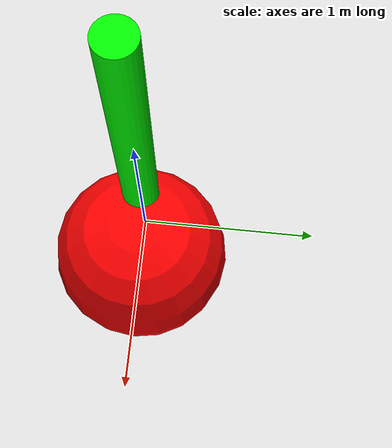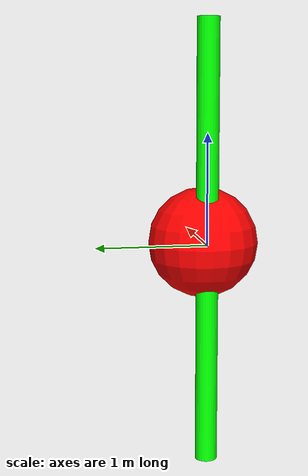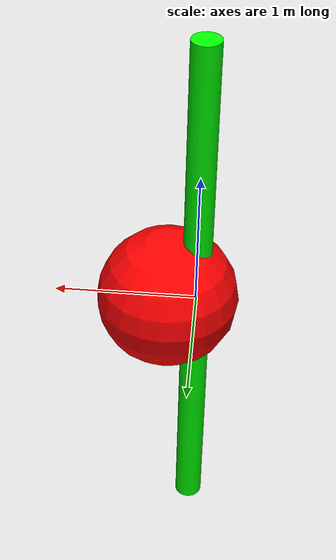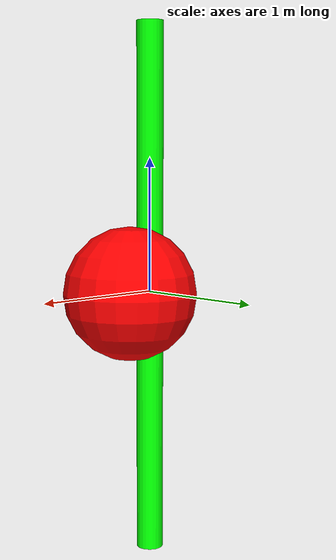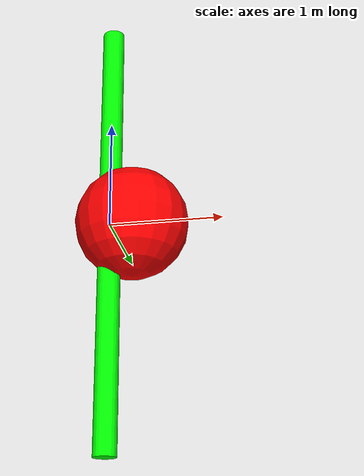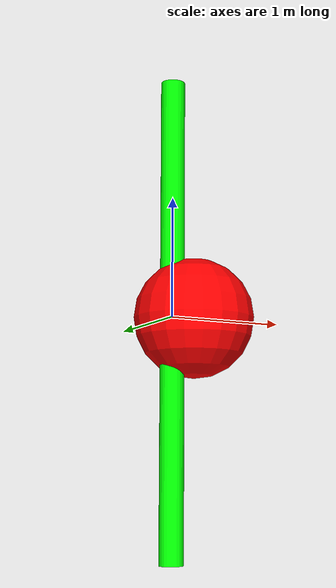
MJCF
<mujoco>
  <option gravity="0 0 -9.81" />
  <worldbody>
    <body name="object_1" pos="0.2 0 0">
      <geom type="sphere" size="0.5" density="5" rgba="1 0 0 1" />
      <joint name="object_1_joint" type="free" />
    </body>
    <body name="object_2" pos="0 0 0">
      <geom type="cylinder" size="0.1 2" density="3" rgba="0 1 0 1" />
      <joint name="object_2_joint" type="hinge" axis="0 0 1" />
    </body>
    <body name="object_3" pos="0 0 -10">
      <geom type="plane" size="30 30 0.1" rgba="0.7 0.7 0.7 1" friction="1 1 1" />
    </body>
  </worldbody>
</mujoco>
